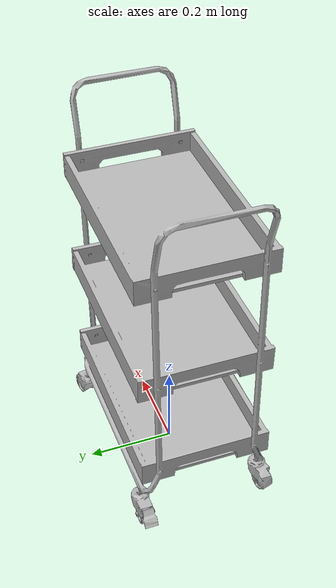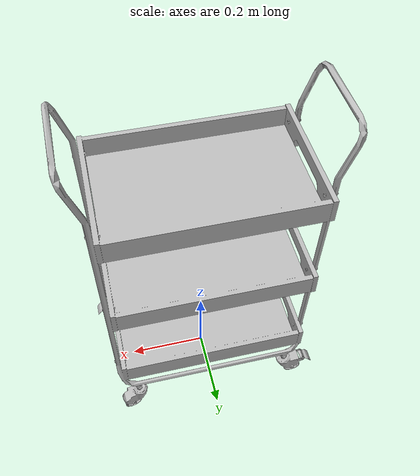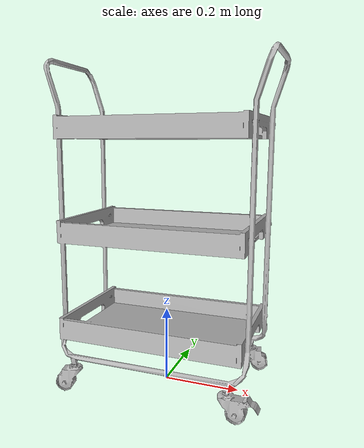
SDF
<sdf version="1.6">
	<model name="ServingCarts_Od1716e02c5bd_lod0">
		<link name="main_link">
			<visual name="visual_RootNode">
				<geometry>
					<mesh>
						<uri>model://ServingCarts_Od1716e02c5bd_lod0/meshes/visual_RootNode.dae</uri>
					</mesh>
				</geometry>
			</visual>
			<collision name="collision_RootNode_lod0_0">
				<geometry>
					<mesh>
						<uri>model://ServingCarts_Od1716e02c5bd_lod0/meshes/collision_RootNode_lod0_0.dae</uri>
					</mesh>
				</geometry>
			</collision>
		</link>
	</model>
</sdf>
